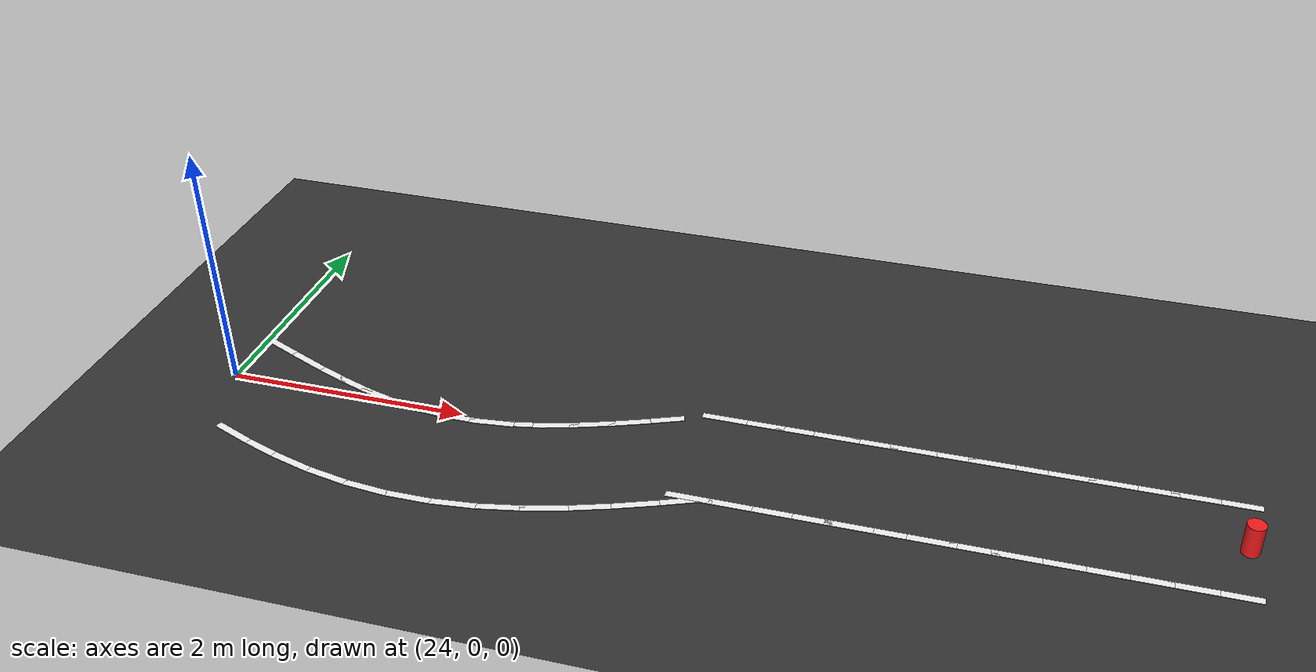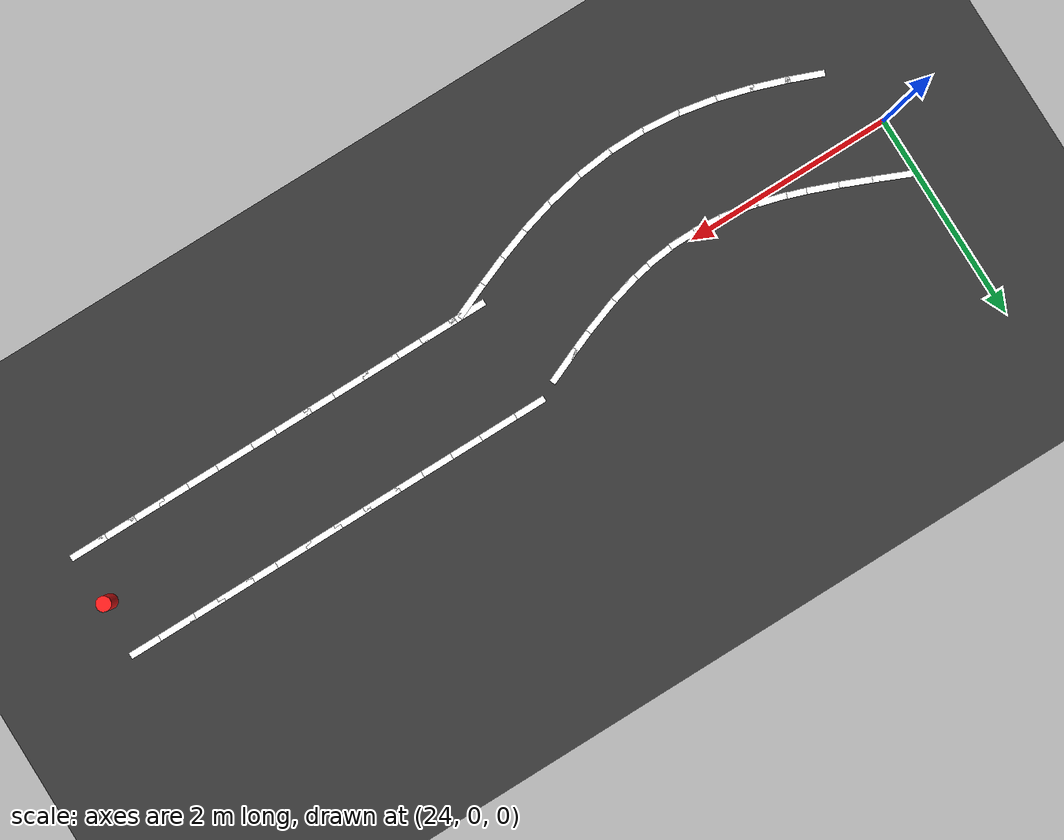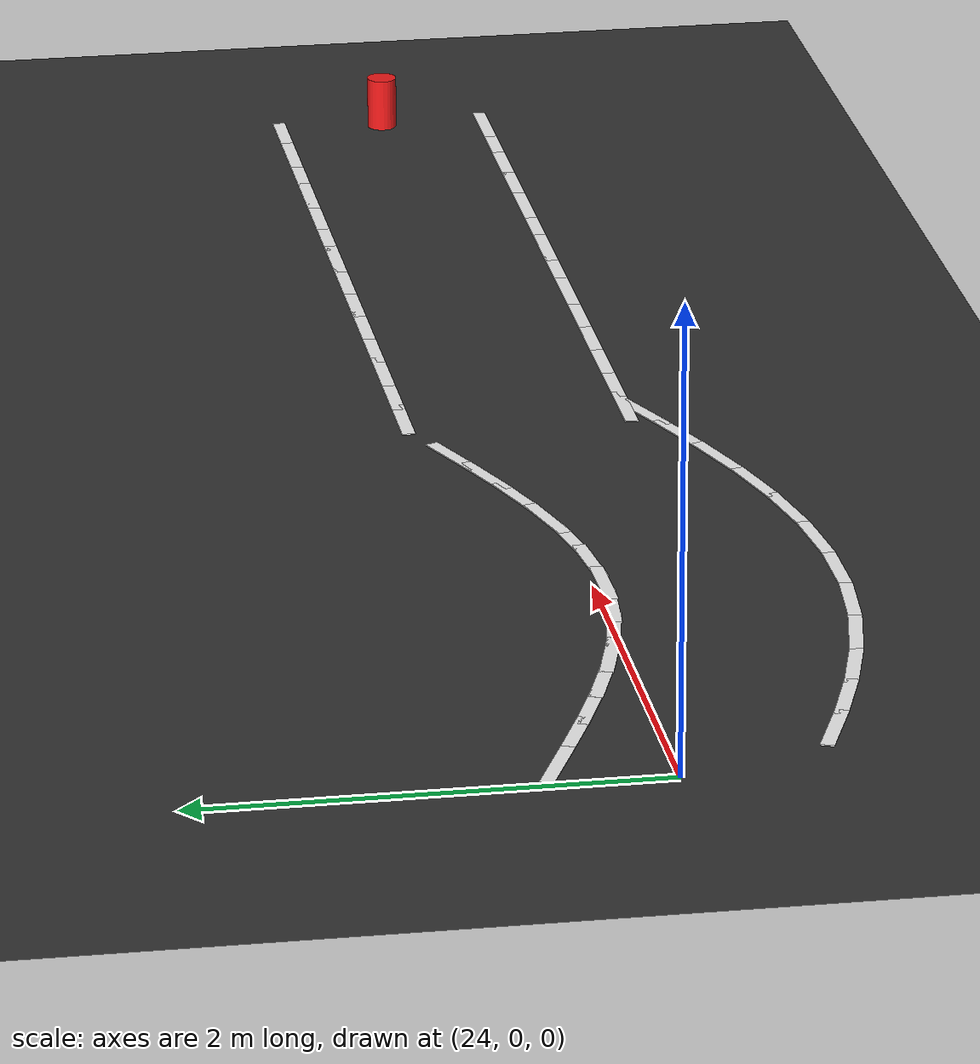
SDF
<sdf version="1.7">
 <world name="cone_lane">
  <model name="ground_plane">
   <static>true</static>
   <link name="link">
    <collision name="collision">
     <geometry><plane><normal>0 0 1</normal><size>150 150</size></plane></geometry>
     <surface><friction><ode><mu>1.0</mu></ode></friction></surface>
    </collision>
    <visual name="visual">
     <geometry><plane><normal>0 0 1</normal><size>100 100</size></plane></geometry>
     <material>
      <ambient>0.16 0.16 0.16 1</ambient>
      <diffuse>0.20 0.20 0.20 1</diffuse>
      <specular>0.02 0.02 0.02 1</specular>
     </material>
    </visual>
   </link>
  </model>
  <model name="line_L084">
   <static>true</static>
   <pose>24.198 0.459 0.0030 0 0 -0.4077</pose>
   <link name="link">
    <visual name="v">
     <geometry><box><size>0.360 0.060 0.005</size></box></geometry>
     <material>
      <ambient>0.85 0.85 0.85 1</ambient>
      <diffuse>0.95 0.95 0.95 1</diffuse>
      <specular>0.1 0.1 0.1 1</specular>
     </material>
    </visual>
   </link>
  </model>
  <model name="line_L085">
   <static>true</static>
   <pose>24.474 0.341 0.0030 0 0 -0.3989</pose>
   <link name="link">
    <visual name="v">
     <geometry><box><size>0.360 0.060 0.005</size></box></geometry>
     <material>
      <ambient>0.85 0.85 0.85 1</ambient>
      <diffuse>0.95 0.95 0.95 1</diffuse>
      <specular>0.1 0.1 0.1 1</specular>
     </material>
    </visual>
   </link>
  </model>
  <model name="line_L086">
   <static>true</static>
   <pose>24.742 0.232 0.0030 0 0 -0.3726</pose>
   <link name="link">
    <visual name="v">
     <geometry><box><size>0.360 0.060 0.005</size></box></geometry>
     <material>
      <ambient>0.85 0.85 0.85 1</ambient>
      <diffuse>0.95 0.95 0.95 1</diffuse>
      <specular>0.1 0.1 0.1 1</specular>
     </material>
    </visual>
   </link>
  </model>
  <model name="line_L087">
   <static>true</static>
   <pose>25.002 0.136 0.0030 0 0 -0.3289</pose>
   <link name="link">
    <visual name="v">
     <geometry><box><size>0.360 0.060 0.005</size></box></geometry>
     <material>
      <ambient>0.85 0.85 0.85 1</ambient>
      <diffuse>0.95 0.95 0.95 1</diffuse>
      <specular>0.1 0.1 0.1 1</specular>
     </material>
    </visual>
   </link>
  </model>
  <model name="line_L088">
   <static>true</static>
   <pose>25.253 0.058 0.0030 0 0 -0.2687</pose>
   <link name="link">
    <visual name="v">
     <geometry><box><size>0.360 0.060 0.005</size></box></geometry>
     <material>
      <ambient>0.85 0.85 0.85 1</ambient>
      <diffuse>0.95 0.95 0.95 1</diffuse>
      <specular>0.1 0.1 0.1 1</specular>
     </material>
    </visual>
   </link>
  </model>
  <model name="line_L089">
   <static>true</static>
   <pose>25.513 -0.003 0.0030 0 0 -0.1878</pose>
   <link name="link">
    <visual name="v">
     <geometry><box><size>0.360 0.060 0.005</size></box></geometry>
     <material>
      <ambient>0.85 0.85 0.85 1</ambient>
      <diffuse>0.95 0.95 0.95 1</diffuse>
      <specular>0.1 0.1 0.1 1</specular>
     </material>
    </visual>
   </link>
  </model>
  <model name="line_L090">
   <static>true</static>
   <pose>25.767 -0.039 0.0030 0 0 -0.0939</pose>
   <link name="link">
    <visual name="v">
     <geometry><box><size>0.360 0.060 0.005</size></box></geometry>
     <material>
      <ambient>0.85 0.85 0.85 1</ambient>
      <diffuse>0.95 0.95 0.95 1</diffuse>
      <specular>0.1 0.1 0.1 1</specular>
     </material>
    </visual>
   </link>
  </model>
  <model name="line_L091">
   <static>true</static>
   <pose>26.017 -0.050 0.0030 0 0 0.0068</pose>
   <link name="link">
    <visual name="v">
     <geometry><box><size>0.360 0.060 0.005</size></box></geometry>
     <material>
      <ambient>0.85 0.85 0.85 1</ambient>
      <diffuse>0.95 0.95 0.95 1</diffuse>
      <specular>0.1 0.1 0.1 1</specular>
     </material>
    </visual>
   </link>
  </model>
  <model name="line_L092">
   <static>true</static>
   <pose>26.267 -0.036 0.0030 0 0 0.1070</pose>
   <link name="link">
    <visual name="v">
     <geometry><box><size>0.360 0.060 0.005</size></box></geometry>
     <material>
      <ambient>0.85 0.85 0.85 1</ambient>
      <diffuse>0.95 0.95 0.95 1</diffuse>
      <specular>0.1 0.1 0.1 1</specular>
     </material>
    </visual>
   </link>
  </model>
  <model name="line_L093">
   <static>true</static>
   <pose>26.521 0.004 0.0030 0 0 0.1994</pose>
   <link name="link">
    <visual name="v">
     <geometry><box><size>0.360 0.060 0.005</size></box></geometry>
     <material>
      <ambient>0.85 0.85 0.85 1</ambient>
      <diffuse>0.95 0.95 0.95 1</diffuse>
      <specular>0.1 0.1 0.1 1</specular>
     </material>
    </visual>
   </link>
  </model>
  <model name="line_L094">
   <static>true</static>
   <pose>26.765 0.063 0.0030 0 0 0.2735</pose>
   <link name="link">
    <visual name="v">
     <geometry><box><size>0.360 0.060 0.005</size></box></geometry>
     <material>
      <ambient>0.85 0.85 0.85 1</ambient>
      <diffuse>0.95 0.95 0.95 1</diffuse>
      <specular>0.1 0.1 0.1 1</specular>
     </material>
    </visual>
   </link>
  </model>
  <model name="line_L095">
   <static>true</static>
   <pose>27.035 0.149 0.0030 0 0 0.3362</pose>
   <link name="link">
    <visual name="v">
     <geometry><box><size>0.360 0.060 0.005</size></box></geometry>
     <material>
      <ambient>0.85 0.85 0.85 1</ambient>
      <diffuse>0.95 0.95 0.95 1</diffuse>
      <specular>0.1 0.1 0.1 1</specular>
     </material>
    </visual>
   </link>
  </model>
  <model name="line_L096">
   <static>true</static>
   <pose>27.296 0.246 0.0030 0 0 0.3774</pose>
   <link name="link">
    <visual name="v">
     <geometry><box><size>0.360 0.060 0.005</size></box></geometry>
     <material>
      <ambient>0.85 0.85 0.85 1</ambient>
      <diffuse>0.95 0.95 0.95 1</diffuse>
      <specular>0.1 0.1 0.1 1</specular>
     </material>
    </visual>
   </link>
  </model>
  <model name="line_L097">
   <static>true</static>
   <pose>27.545 0.349 0.0030 0 0 0.4002</pose>
   <link name="link">
    <visual name="v">
     <geometry><box><size>0.360 0.060 0.005</size></box></geometry>
     <material>
      <ambient>0.85 0.85 0.85 1</ambient>
      <diffuse>0.95 0.95 0.95 1</diffuse>
      <specular>0.1 0.1 0.1 1</specular>
     </material>
    </visual>
   </link>
  </model>
  <model name="line_L098">
   <static>true</static>
   <pose>28.020 0.500 0.0030 0 0 0.0000</pose>
   <link name="link">
    <visual name="v">
     <geometry><box><size>0.360 0.060 0.005</size></box></geometry>
     <material>
      <ambient>0.85 0.85 0.85 1</ambient>
      <diffuse>0.95 0.95 0.95 1</diffuse>
      <specular>0.1 0.1 0.1 1</specular>
     </material>
    </visual>
   </link>
  </model>
  <model name="line_L099">
   <static>true</static>
   <pose>28.320 0.500 0.0030 0 0 0.0000</pose>
   <link name="link">
    <visual name="v">
     <geometry><box><size>0.360 0.060 0.005</size></box></geometry>
     <material>
      <ambient>0.85 0.85 0.85 1</ambient>
      <diffuse>0.95 0.95 0.95 1</diffuse>
      <specular>0.1 0.1 0.1 1</specular>
     </material>
    </visual>
   </link>
  </model>
  <model name="line_L100">
   <static>true</static>
   <pose>28.620 0.500 0.0030 0 0 0.0000</pose>
   <link name="link">
    <visual name="v">
     <geometry><box><size>0.360 0.060 0.005</size></box></geometry>
     <material>
      <ambient>0.85 0.85 0.85 1</ambient>
      <diffuse>0.95 0.95 0.95 1</diffuse>
      <specular>0.1 0.1 0.1 1</specular>
     </material>
    </visual>
   </link>
  </model>
  <model name="line_L101">
   <static>true</static>
   <pose>28.920 0.500 0.0030 0 0 0.0000</pose>
   <link name="link">
    <visual name="v">
     <geometry><box><size>0.360 0.060 0.005</size></box></geometry>
     <material>
      <ambient>0.85 0.85 0.85 1</ambient>
      <diffuse>0.95 0.95 0.95 1</diffuse>
      <specular>0.1 0.1 0.1 1</specular>
     </material>
    </visual>
   </link>
  </model>
  <model name="line_L102">
   <static>true</static>
   <pose>29.220 0.500 0.0030 0 0 0.0000</pose>
   <link name="link">
    <visual name="v">
     <geometry><box><size>0.360 0.060 0.005</size></box></geometry>
     <material>
      <ambient>0.85 0.85 0.85 1</ambient>
      <diffuse>0.95 0.95 0.95 1</diffuse>
      <specular>0.1 0.1 0.1 1</specular>
     </material>
    </visual>
   </link>
  </model>
  <model name="line_L103">
   <static>true</static>
   <pose>29.520 0.500 0.0030 0 0 0.0000</pose>
   <link name="link">
    <visual name="v">
     <geometry><box><size>0.360 0.060 0.005</size></box></geometry>
     <material>
      <ambient>0.85 0.85 0.85 1</ambient>
      <diffuse>0.95 0.95 0.95 1</diffuse>
      <specular>0.1 0.1 0.1 1</specular>
     </material>
    </visual>
   </link>
  </model>
  <model name="line_L104">
   <static>true</static>
   <pose>29.820 0.500 0.0030 0 0 0.0000</pose>
   <link name="link">
    <visual name="v">
     <geometry><box><size>0.360 0.060 0.005</size></box></geometry>
     <material>
      <ambient>0.85 0.85 0.85 1</ambient>
      <diffuse>0.95 0.95 0.95 1</diffuse>
      <specular>0.1 0.1 0.1 1</specular>
     </material>
    </visual>
   </link>
  </model>
  <model name="line_L105">
   <static>true</static>
   <pose>30.120 0.500 0.0030 0 0 0.0000</pose>
   <link name="link">
    <visual name="v">
     <geometry><box><size>0.360 0.060 0.005</size></box></geometry>
     <material>
      <ambient>0.85 0.85 0.85 1</ambient>
      <diffuse>0.95 0.95 0.95 1</diffuse>
      <specular>0.1 0.1 0.1 1</specular>
     </material>
    </visual>
   </link>
  </model>
  <model name="line_L106">
   <static>true</static>
   <pose>30.420 0.500 0.0030 0 0 0.0000</pose>
   <link name="link">
    <visual name="v">
     <geometry><box><size>0.360 0.060 0.005</size></box></geometry>
     <material>
      <ambient>0.85 0.85 0.85 1</ambient>
      <diffuse>0.95 0.95 0.95 1</diffuse>
      <specular>0.1 0.1 0.1 1</specular>
     </material>
    </visual>
   </link>
  </model>
  <model name="line_L107">
   <static>true</static>
   <pose>30.720 0.500 0.0030 0 0 0.0000</pose>
   <link name="link">
    <visual name="v">
     <geometry><box><size>0.360 0.060 0.005</size></box></geometry>
     <material>
      <ambient>0.85 0.85 0.85 1</ambient>
      <diffuse>0.95 0.95 0.95 1</diffuse>
      <specular>0.1 0.1 0.1 1</specular>
     </material>
    </visual>
   </link>
  </model>
  <model name="line_L108">
   <static>true</static>
   <pose>31.020 0.500 0.0030 0 0 0.0000</pose>
   <link name="link">
    <visual name="v">
     <geometry><box><size>0.360 0.060 0.005</size></box></geometry>
     <material>
      <ambient>0.85 0.85 0.85 1</ambient>
      <diffuse>0.95 0.95 0.95 1</diffuse>
      <specular>0.1 0.1 0.1 1</specular>
     </material>
    </visual>
   </link>
  </model>
  <model name="line_L109">
   <static>true</static>
   <pose>31.320 0.500 0.0030 0 0 0.0000</pose>
   <link name="link">
    <visual name="v">
     <geometry><box><size>0.360 0.060 0.005</size></box></geometry>
     <material>
      <ambient>0.85 0.85 0.85 1</ambient>
      <diffuse>0.95 0.95 0.95 1</diffuse>
      <specular>0.1 0.1 0.1 1</specular>
     </material>
    </visual>
   </link>
  </model>
  <model name="line_L110">
   <static>true</static>
   <pose>31.620 0.500 0.0030 0 0 0.0000</pose>
   <link name="link">
    <visual name="v">
     <geometry><box><size>0.360 0.060 0.005</size></box></geometry>
     <material>
      <ambient>0.85 0.85 0.85 1</ambient>
      <diffuse>0.95 0.95 0.95 1</diffuse>
      <specular>0.1 0.1 0.1 1</specular>
     </material>
    </visual>
   </link>
  </model>
  <model name="line_L111">
   <static>true</static>
   <pose>31.920 0.500 0.0030 0 0 0.0000</pose>
   <link name="link">
    <visual name="v">
     <geometry><box><size>0.360 0.060 0.005</size></box></geometry>
     <material>
      <ambient>0.85 0.85 0.85 1</ambient>
      <diffuse>0.95 0.95 0.95 1</diffuse>
      <specular>0.1 0.1 0.1 1</specular>
     </material>
    </visual>
   </link>
  </model>
  <model name="line_R086">
   <static>true</static>
   <pose>24.378 -0.700 0.0030 0 0 -0.3726</pose>
   <link name="link">
    <visual name="v">
     <geometry><box><size>0.360 0.060 0.005</size></box></geometry>
     <material>
      <ambient>0.85 0.85 0.85 1</ambient>
      <diffuse>0.95 0.95 0.95 1</diffuse>
      <specular>0.1 0.1 0.1 1</specular>
     </material>
    </visual>
   </link>
  </model>
  <model name="line_R087">
   <static>true</static>
   <pose>24.678 -0.810 0.0030 0 0 -0.3289</pose>
   <link name="link">
    <visual name="v">
     <geometry><box><size>0.360 0.060 0.005</size></box></geometry>
     <material>
      <ambient>0.85 0.85 0.85 1</ambient>
      <diffuse>0.95 0.95 0.95 1</diffuse>
      <specular>0.1 0.1 0.1 1</specular>
     </material>
    </visual>
   </link>
  </model>
  <model name="line_R088">
   <static>true</static>
   <pose>24.987 -0.906 0.0030 0 0 -0.2687</pose>
   <link name="link">
    <visual name="v">
     <geometry><box><size>0.360 0.060 0.005</size></box></geometry>
     <material>
      <ambient>0.85 0.85 0.85 1</ambient>
      <diffuse>0.95 0.95 0.95 1</diffuse>
      <specular>0.1 0.1 0.1 1</specular>
     </material>
    </visual>
   </link>
  </model>
  <model name="line_R089">
   <static>true</static>
   <pose>25.327 -0.985 0.0030 0 0 -0.1878</pose>
   <link name="link">
    <visual name="v">
     <geometry><box><size>0.360 0.060 0.005</size></box></geometry>
     <material>
      <ambient>0.85 0.85 0.85 1</ambient>
      <diffuse>0.95 0.95 0.95 1</diffuse>
      <specular>0.1 0.1 0.1 1</specular>
     </material>
    </visual>
   </link>
  </model>
  <model name="line_R090">
   <static>true</static>
   <pose>25.673 -1.035 0.0030 0 0 -0.0939</pose>
   <link name="link">
    <visual name="v">
     <geometry><box><size>0.360 0.060 0.005</size></box></geometry>
     <material>
      <ambient>0.85 0.85 0.85 1</ambient>
      <diffuse>0.95 0.95 0.95 1</diffuse>
      <specular>0.1 0.1 0.1 1</specular>
     </material>
    </visual>
   </link>
  </model>
  <model name="line_R091">
   <static>true</static>
   <pose>26.023 -1.050 0.0030 0 0 0.0068</pose>
   <link name="link">
    <visual name="v">
     <geometry><box><size>0.360 0.060 0.005</size></box></geometry>
     <material>
      <ambient>0.85 0.85 0.85 1</ambient>
      <diffuse>0.95 0.95 0.95 1</diffuse>
      <specular>0.1 0.1 0.1 1</specular>
     </material>
    </visual>
   </link>
  </model>
  <model name="line_R092">
   <static>true</static>
   <pose>26.373 -1.030 0.0030 0 0 0.1070</pose>
   <link name="link">
    <visual name="v">
     <geometry><box><size>0.360 0.060 0.005</size></box></geometry>
     <material>
      <ambient>0.85 0.85 0.85 1</ambient>
      <diffuse>0.95 0.95 0.95 1</diffuse>
      <specular>0.1 0.1 0.1 1</specular>
     </material>
    </visual>
   </link>
  </model>
  <model name="line_R093">
   <static>true</static>
   <pose>26.719 -0.976 0.0030 0 0 0.1994</pose>
   <link name="link">
    <visual name="v">
     <geometry><box><size>0.360 0.060 0.005</size></box></geometry>
     <material>
      <ambient>0.85 0.85 0.85 1</ambient>
      <diffuse>0.95 0.95 0.95 1</diffuse>
      <specular>0.1 0.1 0.1 1</specular>
     </material>
    </visual>
   </link>
  </model>
  <model name="line_R094">
   <static>true</static>
   <pose>27.035 -0.900 0.0030 0 0 0.2735</pose>
   <link name="link">
    <visual name="v">
     <geometry><box><size>0.360 0.060 0.005</size></box></geometry>
     <material>
      <ambient>0.85 0.85 0.85 1</ambient>
      <diffuse>0.95 0.95 0.95 1</diffuse>
      <specular>0.1 0.1 0.1 1</specular>
     </material>
    </visual>
   </link>
  </model>
  <model name="line_R095">
   <static>true</static>
   <pose>27.365 -0.795 0.0030 0 0 0.3362</pose>
   <link name="link">
    <visual name="v">
     <geometry><box><size>0.360 0.060 0.005</size></box></geometry>
     <material>
      <ambient>0.85 0.85 0.85 1</ambient>
      <diffuse>0.95 0.95 0.95 1</diffuse>
      <specular>0.1 0.1 0.1 1</specular>
     </material>
    </visual>
   </link>
  </model>
  <model name="line_R096">
   <static>true</static>
   <pose>27.664 -0.683 0.0030 0 0 0.3774</pose>
   <link name="link">
    <visual name="v">
     <geometry><box><size>0.360 0.060 0.005</size></box></geometry>
     <material>
      <ambient>0.85 0.85 0.85 1</ambient>
      <diffuse>0.95 0.95 0.95 1</diffuse>
      <specular>0.1 0.1 0.1 1</specular>
     </material>
    </visual>
   </link>
  </model>
  <model name="line_R097">
   <static>true</static>
   <pose>27.935 -0.572 0.0030 0 0 0.4002</pose>
   <link name="link">
    <visual name="v">
     <geometry><box><size>0.360 0.060 0.005</size></box></geometry>
     <material>
      <ambient>0.85 0.85 0.85 1</ambient>
      <diffuse>0.95 0.95 0.95 1</diffuse>
      <specular>0.1 0.1 0.1 1</specular>
     </material>
    </visual>
   </link>
  </model>
  <model name="line_R098">
   <static>true</static>
   <pose>28.020 -0.500 0.0030 0 0 0.0000</pose>
   <link name="link">
    <visual name="v">
     <geometry><box><size>0.360 0.060 0.005</size></box></geometry>
     <material>
      <ambient>0.85 0.85 0.85 1</ambient>
      <diffuse>0.95 0.95 0.95 1</diffuse>
      <specular>0.1 0.1 0.1 1</specular>
     </material>
    </visual>
   </link>
  </model>
  <model name="line_R099">
   <static>true</static>
   <pose>28.320 -0.500 0.0030 0 0 0.0000</pose>
   <link name="link">
    <visual name="v">
     <geometry><box><size>0.360 0.060 0.005</size></box></geometry>
     <material>
      <ambient>0.85 0.85 0.85 1</ambient>
      <diffuse>0.95 0.95 0.95 1</diffuse>
      <specular>0.1 0.1 0.1 1</specular>
     </material>
    </visual>
   </link>
  </model>
  <model name="line_R100">
   <static>true</static>
   <pose>28.620 -0.500 0.0030 0 0 0.0000</pose>
   <link name="link">
    <visual name="v">
     <geometry><box><size>0.360 0.060 0.005</size></box></geometry>
     <material>
      <ambient>0.85 0.85 0.85 1</ambient>
      <diffuse>0.95 0.95 0.95 1</diffuse>
      <specular>0.1 0.1 0.1 1</specular>
     </material>
    </visual>
   </link>
  </model>
  <model name="line_R101">
   <static>true</static>
   <pose>28.920 -0.500 0.0030 0 0 0.0000</pose>
   <link name="link">
    <visual name="v">
     <geometry><box><size>0.360 0.060 0.005</size></box></geometry>
     <material>
      <ambient>0.85 0.85 0.85 1</ambient>
      <diffuse>0.95 0.95 0.95 1</diffuse>
      <specular>0.1 0.1 0.1 1</specular>
     </material>
    </visual>
   </link>
  </model>
  <model name="line_R102">
   <static>true</static>
   <pose>29.220 -0.500 0.0030 0 0 0.0000</pose>
   <link name="link">
    <visual name="v">
     <geometry><box><size>0.360 0.060 0.005</size></box></geometry>
     <material>
      <ambient>0.85 0.85 0.85 1</ambient>
      <diffuse>0.95 0.95 0.95 1</diffuse>
      <specular>0.1 0.1 0.1 1</specular>
     </material>
    </visual>
   </link>
  </model>
  <model name="line_R103">
   <static>true</static>
   <pose>29.520 -0.500 0.0030 0 0 0.0000</pose>
   <link name="link">
    <visual name="v">
     <geometry><box><size>0.360 0.060 0.005</size></box></geometry>
     <material>
      <ambient>0.85 0.85 0.85 1</ambient>
      <diffuse>0.95 0.95 0.95 1</diffuse>
      <specular>0.1 0.1 0.1 1</specular>
     </material>
    </visual>
   </link>
  </model>
  <model name="line_R104">
   <static>true</static>
   <pose>29.820 -0.500 0.0030 0 0 0.0000</pose>
   <link name="link">
    <visual name="v">
     <geometry><box><size>0.360 0.060 0.005</size></box></geometry>
     <material>
      <ambient>0.85 0.85 0.85 1</ambient>
      <diffuse>0.95 0.95 0.95 1</diffuse>
      <specular>0.1 0.1 0.1 1</specular>
     </material>
    </visual>
   </link>
  </model>
  <model name="line_R105">
   <static>true</static>
   <pose>30.120 -0.500 0.0030 0 0 0.0000</pose>
   <link name="link">
    <visual name="v">
     <geometry><box><size>0.360 0.060 0.005</size></box></geometry>
     <material>
      <ambient>0.85 0.85 0.85 1</ambient>
      <diffuse>0.95 0.95 0.95 1</diffuse>
      <specular>0.1 0.1 0.1 1</specular>
     </material>
    </visual>
   </link>
  </model>
  <model name="line_R106">
   <static>true</static>
   <pose>30.420 -0.500 0.0030 0 0 0.0000</pose>
   <link name="link">
    <visual name="v">
     <geometry><box><size>0.360 0.060 0.005</size></box></geometry>
     <material>
      <ambient>0.85 0.85 0.85 1</ambient>
      <diffuse>0.95 0.95 0.95 1</diffuse>
      <specular>0.1 0.1 0.1 1</specular>
     </material>
    </visual>
   </link>
  </model>
  <model name="line_R107">
   <static>true</static>
   <pose>30.720 -0.500 0.0030 0 0 0.0000</pose>
   <link name="link">
    <visual name="v">
     <geometry><box><size>0.360 0.060 0.005</size></box></geometry>
     <material>
      <ambient>0.85 0.85 0.85 1</ambient>
      <diffuse>0.95 0.95 0.95 1</diffuse>
      <specular>0.1 0.1 0.1 1</specular>
     </material>
    </visual>
   </link>
  </model>
  <model name="line_R108">
   <static>true</static>
   <pose>31.020 -0.500 0.0030 0 0 0.0000</pose>
   <link name="link">
    <visual name="v">
     <geometry><box><size>0.360 0.060 0.005</size></box></geometry>
     <material>
      <ambient>0.85 0.85 0.85 1</ambient>
      <diffuse>0.95 0.95 0.95 1</diffuse>
      <specular>0.1 0.1 0.1 1</specular>
     </material>
    </visual>
   </link>
  </model>
  <model name="line_R109">
   <static>true</static>
   <pose>31.320 -0.500 0.0030 0 0 0.0000</pose>
   <link name="link">
    <visual name="v">
     <geometry><box><size>0.360 0.060 0.005</size></box></geometry>
     <material>
      <ambient>0.85 0.85 0.85 1</ambient>
      <diffuse>0.95 0.95 0.95 1</diffuse>
      <specular>0.1 0.1 0.1 1</specular>
     </material>
    </visual>
   </link>
  </model>
  <model name="line_R110">
   <static>true</static>
   <pose>31.620 -0.500 0.0030 0 0 0.0000</pose>
   <link name="link">
    <visual name="v">
     <geometry><box><size>0.360 0.060 0.005</size></box></geometry>
     <material>
      <ambient>0.85 0.85 0.85 1</ambient>
      <diffuse>0.95 0.95 0.95 1</diffuse>
      <specular>0.1 0.1 0.1 1</specular>
     </material>
    </visual>
   </link>
  </model>
  <model name="line_R111">
   <static>true</static>
   <pose>31.920 -0.500 0.0030 0 0 0.0000</pose>
   <link name="link">
    <visual name="v">
     <geometry><box><size>0.360 0.060 0.005</size></box></geometry>
     <material>
      <ambient>0.85 0.85 0.85 1</ambient>
      <diffuse>0.95 0.95 0.95 1</diffuse>
      <specular>0.1 0.1 0.1 1</specular>
     </material>
    </visual>
   </link>
  </model>
  <model name="cone_goal">
   <static>true</static>
   <pose>32.000 -0.000 0.125 0 0 0</pose>
   <link name="link">
    <visual name="v">
     <geometry><cylinder><radius>0.07</radius><length>0.25</length></cylinder></geometry>
     <material>
      <ambient>0.8 0.05 0.05 1</ambient>
      <diffuse>0.95 0.1 0.1 1</diffuse>
      <specular>0.3 0.05 0.05 1</specular>
     </material>
    </visual>
    <collision name="c">
     <geometry><cylinder><radius>0.07</radius><length>0.25</length></cylinder></geometry>
    </collision>
   </link>
  </model>
 </world>
</sdf>
